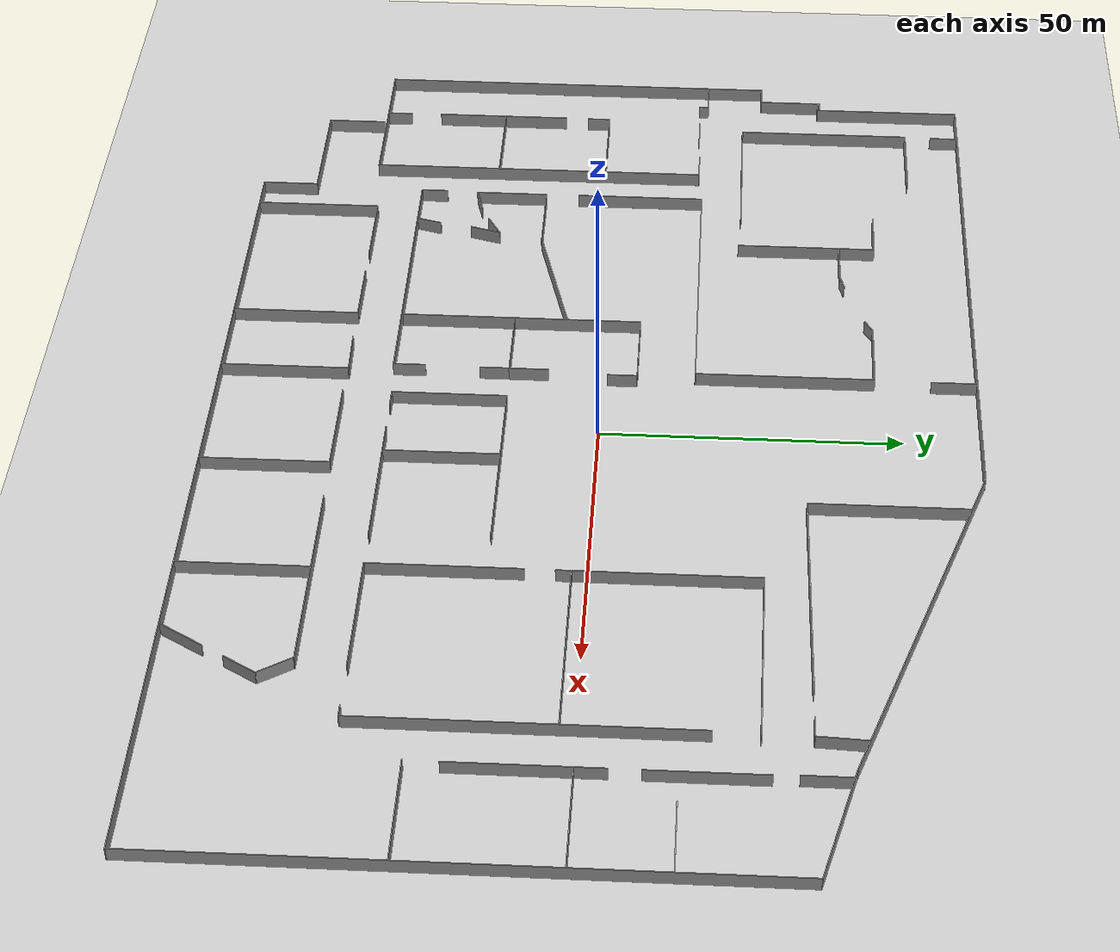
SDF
<sdf version="1.6">
 <world name="default">
  <model name="ground_plane">
   <static>1</static>
   <link name="link">
    <collision name="collision">
     <geometry><plane><normal>0 0 1</normal><size>100 100</size></plane></geometry>
     <surface>
      <contact><collide_bitmask>65535</collide_bitmask></contact>
      <friction><ode><mu>100</mu><mu2>50</mu2></ode></friction>
     </surface>
    </collision>
    <visual name="visual">
     <cast_shadows>0</cast_shadows>
     <geometry><plane><normal>0 0 1</normal><size>100 100</size></plane></geometry>
     <material>
      <script><uri>file://media/materials/scripts/gazebo.material</uri><name>Gazebo/Grey</name></script>
     </material>
    </visual>
   </link>
  </model>
  <model name="200x200">
   <pose>-1.934 -0.6282 0 0 -0 0</pose>
   <link name="Wall_1">
    <collision name="Wall_1_Collision">
     <geometry><box><size>2 0.15 2.5</size></box></geometry>
     <pose>0 0 1.25 0 -0 0</pose>
    </collision>
    <visual name="Wall_1_Visual">
     <pose>0 0 1.25 0 -0 0</pose>
     <geometry><box><size>2 0.15 2.5</size></box></geometry>
     <material>
      <script><uri>file://media/materials/scripts/gazebo.material</uri><name>Gazebo/Grey</name></script>
      <ambient>1 1 1 1</ambient>
     </material>
     <meta><layer>0</layer></meta>
    </visual>
    <pose>-88.1339 37.765 0 0 -0 3.14159</pose>
   </link>
   <link name="Wall_10">
    <collision name="Wall_10_Collision">
     <geometry><box><size>2.16821 0.15 2.5</size></box></geometry>
     <pose>0 0 1.25 0 -0 0</pose>
    </collision>
    <visual name="Wall_10_Visual">
     <pose>0 0 1.25 0 -0 0</pose>
     <geometry><box><size>2.16821 0.15 2.5</size></box></geometry>
     <material>
      <script><uri>file://media/materials/scripts/gazebo.material</uri><name>Gazebo/Grey</name></script>
      <ambient>1 1 1 1</ambient>
     </material>
     <meta><layer>0</layer></meta>
    </visual>
    <pose>-88.0244 37.494 0 0 -0 -3.12123</pose>
   </link>
   <link name="Wall_100">
    <collision name="Wall_100_Collision">
     <geometry><box><size>21.5 0.15 2.5</size></box></geometry>
     <pose>0 0 1.25 0 -0 0</pose>
    </collision>
    <visual name="Wall_100_Visual">
     <pose>0 0 1.25 0 -0 0</pose>
     <geometry><box><size>21.5 0.15 2.5</size></box></geometry>
     <material>
      <script><uri>file://media/materials/scripts/gazebo.material</uri><name>Gazebo/Grey</name></script>
      <ambient>1 1 1 1</ambient>
     </material>
     <meta><layer>0</layer></meta>
    </visual>
    <pose>-9.33183 -52.4163 0 0 -0 -1.5708</pose>
   </link>
   <link name="Wall_102">
    <collision name="Wall_102_Collision">
     <geometry><box><size>17.5 0.15 2.5</size></box></geometry>
     <pose>0 0 1.25 0 -0 0</pose>
    </collision>
    <visual name="Wall_102_Visual">
     <pose>0 0 1.25 0 -0 0</pose>
     <geometry><box><size>17.5 0.15 2.5</size></box></geometry>
     <material>
      <script><uri>file://media/materials/scripts/gazebo.material</uri><name>Gazebo/Grey</name></script>
      <ambient>1 1 1 1</ambient>
     </material>
     <meta><layer>0</layer></meta>
    </visual>
    <pose>4.91351 -41.9689 0 0 -0 0</pose>
   </link>
   <link name="Wall_103">
    <collision name="Wall_103_Collision">
     <geometry><box><size>21.25 0.15 2.5</size></box></geometry>
     <pose>0 0 1.25 0 -0 0</pose>
    </collision>
    <visual name="Wall_103_Visual">
     <pose>0 0 1.25 0 -0 0</pose>
     <geometry><box><size>21.25 0.15 2.5</size></box></geometry>
     <material>
      <script><uri>file://media/materials/scripts/gazebo.material</uri><name>Gazebo/Grey</name></script>
      <ambient>1 1 1 1</ambient>
     </material>
     <meta><layer>0</layer></meta>
    </visual>
    <pose>13.5885 -52.5189 0 0 -0 -1.5708</pose>
   </link>
   <link name="Wall_105">
    <collision name="Wall_105_Collision">
     <geometry><box><size>34.75 0.15 2.5</size></box></geometry>
     <pose>0 0 1.25 0 -0 0</pose>
    </collision>
    <visual name="Wall_105_Visual">
     <pose>0 0 1.25 0 -0 0</pose>
     <geometry><box><size>34.75 0.15 2.5</size></box></geometry>
     <material>
      <script><uri>file://media/materials/scripts/gazebo.material</uri><name>Gazebo/Grey</name></script>
      <ambient>1 1 1 1</ambient>
     </material>
     <meta><layer>0</layer></meta>
    </visual>
    <pose>38.7694 -41.8672 0 0 -0 0</pose>
   </link>
   <link name="Wall_106">
    <collision name="Wall_106_Collision">
     <geometry><box><size>6.26653 0.15 2.5</size></box></geometry>
     <pose>0 0 1.25 0 -0 0</pose>
    </collision>
    <visual name="Wall_106_Visual">
     <pose>0 0 1.25 0 -0 0</pose>
     <geometry><box><size>6.26653 0.15 2.5</size></box></geometry>
     <material>
      <script><uri>file://media/materials/scripts/gazebo.material</uri><name>Gazebo/Grey</name></script>
      <ambient>1 1 1 1</ambient>
     </material>
     <meta><layer>0</layer></meta>
    </visual>
    <pose>57.69 -44.5564 0 0 -0 -1.0123</pose>
   </link>
   <link name="Wall_107">
    <collision name="Wall_107_Collision">
     <geometry><box><size>6.25 0.15 2.5</size></box></geometry>
     <pose>0 0 1.25 0 -0 0</pose>
    </collision>
    <visual name="Wall_107_Visual">
     <pose>0 0 1.25 0 -0 0</pose>
     <geometry><box><size>6.25 0.15 2.5</size></box></geometry>
     <material>
      <script><uri>file://media/materials/scripts/gazebo.material</uri><name>Gazebo/Grey</name></script>
      <ambient>1 1 1 1</ambient>
     </material>
     <meta><layer>0</layer></meta>
    </visual>
    <pose>57.7856 -49.7913 0 0 -0 -2.0944</pose>
   </link>
   <link name="Wall_11">
    <collision name="Wall_11_Collision">
     <geometry><box><size>10.75 0.15 2.5</size></box></geometry>
     <pose>0 0 1.25 0 -0 0</pose>
    </collision>
    <visual name="Wall_11_Visual">
     <pose>0 0 1.25 0 -0 0</pose>
     <geometry><box><size>10.75 0.15 2.5</size></box></geometry>
     <material>
      <script><uri>file://media/materials/scripts/gazebo.material</uri><name>Gazebo/Grey</name></script>
      <ambient>1 1 1 1</ambient>
     </material>
     <meta><layer>0</layer></meta>
    </visual>
    <pose>-89.0333 32.1734 0 0 -0 -1.5708</pose>
   </link>
   <link name="Wall_110">
    <collision name="Wall_110_Collision">
     <geometry><box><size>8.25 0.15 2.5</size></box></geometry>
     <pose>0 0 1.25 0 -0 0</pose>
    </collision>
    <visual name="Wall_110_Visual">
     <pose>0 0 1.25 0 -0 0</pose>
     <geometry><box><size>8.25 0.15 2.5</size></box></geometry>
     <material>
      <script><uri>file://media/materials/scripts/gazebo.material</uri><name>Gazebo/Grey</name></script>
      <ambient>1 1 1 1</ambient>
     </material>
     <meta><layer>0</layer></meta>
    </visual>
    <pose>52.2169 -59.5102 0 0 -0 -2.0944</pose>
   </link>
   <link name="Wall_112">
    <collision name="Wall_112_Collision">
     <geometry><box><size>21.25 0.15 2.5</size></box></geometry>
     <pose>0 0 1.25 0 -0 0</pose>
    </collision>
    <visual name="Wall_112_Visual">
     <pose>0 0 1.25 0 -0 0</pose>
     <geometry><box><size>21.25 0.15 2.5</size></box></geometry>
     <material>
      <script><uri>file://media/materials/scripts/gazebo.material</uri><name>Gazebo/Grey</name></script>
      <ambient>1 1 1 1</ambient>
     </material>
     <meta><layer>0</layer></meta>
    </visual>
    <pose>37.0784 -52.4679 0 0 -0 -1.5708</pose>
   </link>
   <link name="Wall_114">
    <collision name="Wall_114_Collision">
     <geometry><box><size>4.75 0.15 2.5</size></box></geometry>
     <pose>0 0 1.25 0 -0 0</pose>
    </collision>
    <visual name="Wall_114_Visual">
     <pose>0 0 1.25 0 -0 0</pose>
     <geometry><box><size>4.75 0.15 2.5</size></box></geometry>
     <material>
      <script><uri>file://media/materials/scripts/gazebo.material</uri><name>Gazebo/Grey</name></script>
      <ambient>1 1 1 1</ambient>
     </material>
     <meta><layer>0</layer></meta>
    </visual>
    <pose>-56.2329 -23.5876 0 0 -0 0.261799</pose>
   </link>
   <link name="Wall_116">
    <collision name="Wall_116_Collision">
     <geometry><box><size>4.75 0.15 2.5</size></box></geometry>
     <pose>0 0 1.25 0 -0 0</pose>
    </collision>
    <visual name="Wall_116_Visual">
     <pose>0 0 1.25 0 -0 0</pose>
     <geometry><box><size>4.75 0.15 2.5</size></box></geometry>
     <material>
      <script><uri>file://media/materials/scripts/gazebo.material</uri><name>Gazebo/Grey</name></script>
      <ambient>1 1 1 1</ambient>
     </material>
     <meta><layer>0</layer></meta>
    </visual>
    <pose>-49.033 -20.4831 0 0 -0 0.523599</pose>
   </link>
   <link name="Wall_117">
    <collision name="Wall_117_Collision">
     <geometry><box><size>5.5 0.15 2.5</size></box></geometry>
     <pose>0 0 1.25 0 -0 0</pose>
    </collision>
    <visual name="Wall_117_Visual">
     <pose>0 0 1.25 0 -0 0</pose>
     <geometry><box><size>5.5 0.15 2.5</size></box></geometry>
     <material>
      <script><uri>file://media/materials/scripts/gazebo.material</uri><name>Gazebo/Grey</name></script>
      <ambient>1 1 1 1</ambient>
     </material>
     <meta><layer>0</layer></meta>
    </visual>
    <pose>-47.7335 -21.9169 0 0 -0 -1.8326</pose>
   </link>
   <link name="Wall_119">
    <collision name="Wall_119_Collision">
     <geometry><box><size>4.5 0.15 2.5</size></box></geometry>
     <pose>0 0 1.25 0 -0 0</pose>
    </collision>
    <visual name="Wall_119_Visual">
     <pose>0 0 1.25 0 -0 0</pose>
     <geometry><box><size>4.5 0.15 2.5</size></box></geometry>
     <material>
      <script><uri>file://media/materials/scripts/gazebo.material</uri><name>Gazebo/Grey</name></script>
      <ambient>1 1 1 1</ambient>
     </material>
     <meta><layer>0</layer></meta>
    </visual>
    <pose>-49.8293 -32.1308 0 0 -0 -1.8326</pose>
   </link>
   <link name="Wall_12">
    <collision name="Wall_12_Collision">
     <geometry><box><size>4 0.15 2.5</size></box></geometry>
     <pose>0 0 1.25 0 -0 0</pose>
    </collision>
    <visual name="Wall_12_Visual">
     <pose>0 0 1.25 0 -0 0</pose>
     <geometry><box><size>4 0.15 2.5</size></box></geometry>
     <material>
      <script><uri>file://media/materials/scripts/gazebo.material</uri><name>Gazebo/Grey</name></script>
      <ambient>1 1 1 1</ambient>
     </material>
     <meta><layer>0</layer></meta>
    </visual>
    <pose>-90.9583 26.8734 0 0 -0 3.14159</pose>
   </link>
   <link name="Wall_121">
    <collision name="Wall_121_Collision">
     <geometry><box><size>15.25 0.15 2.5</size></box></geometry>
     <pose>0 0 1.25 0 -0 0</pose>
    </collision>
    <visual name="Wall_121_Visual">
     <pose>0 0 1.25 0 -0 0</pose>
     <geometry><box><size>15.25 0.15 2.5</size></box></geometry>
     <material>
      <script><uri>file://media/materials/scripts/gazebo.material</uri><name>Gazebo/Grey</name></script>
      <ambient>1 1 1 1</ambient>
     </material>
     <meta><layer>0</layer></meta>
    </visual>
    <pose>-74.4745 -1.46643 0 0 -0 3.14159</pose>
   </link>
   <link name="Wall_122">
    <collision name="Wall_122_Collision">
     <geometry><box><size>4 0.15 2.5</size></box></geometry>
     <pose>0 0 1.25 0 -0 0</pose>
    </collision>
    <visual name="Wall_122_Visual">
     <pose>0 0 1.25 0 -0 0</pose>
     <geometry><box><size>4 0.15 2.5</size></box></geometry>
     <material>
      <script><uri>file://media/materials/scripts/gazebo.material</uri><name>Gazebo/Grey</name></script>
      <ambient>1 1 1 1</ambient>
     </material>
     <meta><layer>0</layer></meta>
    </visual>
    <pose>-82.0245 -3.39143 0 0 -0 -1.5708</pose>
   </link>
   <link name="Wall_124">
    <collision name="Wall_124_Collision">
     <geometry><box><size>23.5 0.15 2.5</size></box></geometry>
     <pose>0 0 1.25 0 -0 0</pose>
    </collision>
    <visual name="Wall_124_Visual">
     <pose>0 0 1.25 0 -0 0</pose>
     <geometry><box><size>23.5 0.15 2.5</size></box></geometry>
     <material>
      <script><uri>file://media/materials/scripts/gazebo.material</uri><name>Gazebo/Grey</name></script>
      <ambient>1 1 1 1</ambient>
     </material>
     <meta><layer>0</layer></meta>
    </visual>
    <pose>-82.0598 -21.3227 0 0 -0 -1.5708</pose>
   </link>
   <link name="Wall_126">
    <collision name="Wall_126_Collision">
     <geometry><box><size>16.25 0.15 2.5</size></box></geometry>
     <pose>0 0 1.25 0 -0 0</pose>
    </collision>
    <visual name="Wall_126_Visual">
     <pose>0 0 1.25 0 -0 0</pose>
     <geometry><box><size>16.25 0.15 2.5</size></box></geometry>
     <material>
      <script><uri>file://media/materials/scripts/gazebo.material</uri><name>Gazebo/Grey</name></script>
      <ambient>1 1 1 1</ambient>
     </material>
     <meta><layer>0</layer></meta>
    </visual>
    <pose>-73.9643 -20.8969 0 0 -0 0</pose>
   </link>
   <link name="Wall_128">
    <collision name="Wall_128_Collision">
     <geometry><box><size>4.5 0.15 2.5</size></box></geometry>
     <pose>0 0 1.25 0 -0 0</pose>
    </collision>
    <visual name="Wall_128_Visual">
     <pose>0 0 1.25 0 -0 0</pose>
     <geometry><box><size>4.5 0.15 2.5</size></box></geometry>
     <material>
      <script><uri>file://media/materials/scripts/gazebo.material</uri><name>Gazebo/Grey</name></script>
      <ambient>1 1 1 1</ambient>
     </material>
     <meta><layer>0</layer></meta>
    </visual>
    <pose>-81.9745 -40.7846 0 0 -0 -1.5708</pose>
   </link>
   <link name="Wall_13">
    <collision name="Wall_13_Collision">
     <geometry><box><size>70 0.15 2.5</size></box></geometry>
     <pose>0 0 1.25 0 -0 0</pose>
    </collision>
    <visual name="Wall_13_Visual">
     <pose>0 0 1.25 0 -0 0</pose>
     <geometry><box><size>70 0.15 2.5</size></box></geometry>
     <material>
      <script><uri>file://media/materials/scripts/gazebo.material</uri><name>Gazebo/Grey</name></script>
      <ambient>1 1 1 1</ambient>
     </material>
     <meta><layer>0</layer></meta>
    </visual>
    <pose>-92.8833 -8.05159 0 0 -0 -1.5708</pose>
   </link>
   <link name="Wall_132">
    <collision name="Wall_132_Collision">
     <geometry><box><size>26 0.15 2.5</size></box></geometry>
     <pose>0 0 1.25 0 -0 0</pose>
    </collision>
    <visual name="Wall_132_Visual">
     <pose>0 0 1.25 0 -0 0</pose>
     <geometry><box><size>26 0.15 2.5</size></box></geometry>
     <material>
      <script><uri>file://media/materials/scripts/gazebo.material</uri><name>Gazebo/Grey</name></script>
      <ambient>1 1 1 1</ambient>
     </material>
     <meta><layer>0</layer></meta>
    </visual>
    <pose>19.1403 47.6641 0 0 -0 -1.5708</pose>
   </link>
   <link name="Wall_133">
    <collision name="Wall_133_Collision">
     <geometry><box><size>39.4868 0.15 2.5</size></box></geometry>
     <pose>0 0 1.25 0 -0 0</pose>
    </collision>
    <visual name="Wall_133_Visual">
     <pose>0 0 1.25 0 -0 0</pose>
     <geometry><box><size>39.4868 0.15 2.5</size></box></geometry>
     <material>
      <script><uri>file://media/materials/scripts/gazebo.material</uri><name>Gazebo/Grey</name></script>
      <ambient>1 1 1 1</ambient>
     </material>
     <meta><layer>0</layer></meta>
    </visual>
    <pose>38.8057 35.0158 0 0 -0 0.017285</pose>
   </link>
   <link name="Wall_135">
    <collision name="Wall_135_Collision">
     <geometry><box><size>3.75488 0.15 2.5</size></box></geometry>
     <pose>0 0 1.25 0 -0 0</pose>
    </collision>
    <visual name="Wall_135_Visual">
     <pose>0 0 1.25 0 -0 0</pose>
     <geometry><box><size>3.75488 0.15 2.5</size></box></geometry>
     <material>
      <script><uri>file://media/materials/scripts/gazebo.material</uri><name>Gazebo/Grey</name></script>
      <ambient>1 1 1 1</ambient>
     </material>
     <meta><layer>0</layer></meta>
    </visual>
    <pose>65.5332 35.4234 0 0 -0 0</pose>
   </link>
   <link name="Wall_136">
    <collision name="Wall_136_Collision">
     <geometry><box><size>7.97058 0.15 2.5</size></box></geometry>
     <pose>0 0 1.25 0 -0 0</pose>
    </collision>
    <visual name="Wall_136_Visual">
     <pose>0 0 1.25 0 -0 0</pose>
     <geometry><box><size>7.97058 0.15 2.5</size></box></geometry>
     <material>
      <script><uri>file://media/materials/scripts/gazebo.material</uri><name>Gazebo/Grey</name></script>
      <ambient>1 1 1 1</ambient>
     </material>
     <meta><layer>0</layer></meta>
    </visual>
    <pose>67.5318 39.3778 0 0 -0 1.52063</pose>
   </link>
   <link name="Wall_138">
    <collision name="Wall_138_Collision">
     <geometry><box><size>7.75 0.15 2.5</size></box></geometry>
     <pose>0 0 1.25 0 -0 0</pose>
    </collision>
    <visual name="Wall_138_Visual">
     <pose>0 0 1.25 0 -0 0</pose>
     <geometry><box><size>7.75 0.15 2.5</size></box></geometry>
     <material>
      <script><uri>file://media/materials/scripts/gazebo.material</uri><name>Gazebo/Grey</name></script>
      <ambient>1 1 1 1</ambient>
     </material>
     <meta><layer>0</layer></meta>
    </visual>
    <pose>74.7284 37.1199 0 0 -0 -1.5708</pose>
   </link>
   <link name="Wall_14">
    <collision name="Wall_14_Collision">
     <geometry><box><size>27.25 0.15 2.5</size></box></geometry>
     <pose>0 0 1.25 0 -0 0</pose>
    </collision>
    <visual name="Wall_14_Visual">
     <pose>0 0 1.25 0 -0 0</pose>
     <geometry><box><size>27.25 0.15 2.5</size></box></geometry>
     <material>
      <script><uri>file://media/materials/scripts/gazebo.material</uri><name>Gazebo/Grey</name></script>
      <ambient>1 1 1 1</ambient>
     </material>
     <meta><layer>0</layer></meta>
    </visual>
    <pose>-79.3333 -42.9766 0 0 -0 0</pose>
   </link>
   <link name="Wall_140">
    <collision name="Wall_140_Collision">
     <geometry><box><size>18.75 0.15 2.5</size></box></geometry>
     <pose>0 0 1.25 0 -0 0</pose>
    </collision>
    <visual name="Wall_140_Visual">
     <pose>0 0 1.25 0 -0 0</pose>
     <geometry><box><size>18.75 0.15 2.5</size></box></geometry>
     <material>
      <script><uri>file://media/materials/scripts/gazebo.material</uri><name>Gazebo/Grey</name></script>
      <ambient>1 1 1 1</ambient>
     </material>
     <meta><layer>0</layer></meta>
    </visual>
    <pose>74.8898 20.0424 0 0 -0 -1.5708</pose>
   </link>
   <link name="Wall_142">
    <collision name="Wall_142_Collision">
     <geometry><box><size>24.25 0.15 2.5</size></box></geometry>
     <pose>0 0 1.25 0 -0 0</pose>
    </collision>
    <visual name="Wall_142_Visual">
     <pose>0 0 1.25 0 -0 0</pose>
     <geometry><box><size>24.25 0.15 2.5</size></box></geometry>
     <material>
      <script><uri>file://media/materials/scripts/gazebo.material</uri><name>Gazebo/Grey</name></script>
      <ambient>1 1 1 1</ambient>
     </material>
     <meta><layer>0</layer></meta>
    </visual>
    <pose>74.8898 -6.2518 0 0 -0 -1.5708</pose>
   </link>
   <link name="Wall_144">
    <collision name="Wall_144_Collision">
     <geometry><box><size>18.25 0.15 2.5</size></box></geometry>
     <pose>0 0 1.25 0 -0 0</pose>
    </collision>
    <visual name="Wall_144_Visual">
     <pose>0 0 1.25 0 -0 0</pose>
     <geometry><box><size>18.25 0.15 2.5</size></box></geometry>
     <material>
      <script><uri>file://media/materials/scripts/gazebo.material</uri><name>Gazebo/Grey</name></script>
      <ambient>1 1 1 1</ambient>
     </material>
     <meta><layer>0</layer></meta>
    </visual>
    <pose>83.7898 -23.7446 0 0 -0 0</pose>
   </link>
   <link name="Wall_146">
    <collision name="Wall_146_Collision">
     <geometry><box><size>12.5 0.15 2.5</size></box></geometry>
     <pose>0 0 1.25 0 -0 0</pose>
    </collision>
    <visual name="Wall_146_Visual">
     <pose>0 0 1.25 0 -0 0</pose>
     <geometry><box><size>12.5 0.15 2.5</size></box></geometry>
     <material>
      <script><uri>file://media/materials/scripts/gazebo.material</uri><name>Gazebo/Grey</name></script>
      <ambient>1 1 1 1</ambient>
     </material>
     <meta><layer>0</layer></meta>
    </visual>
    <pose>86.6134 15.8457 0 0 -0 0</pose>
   </link>
   <link name="Wall_149">
    <collision name="Wall_149_Collision">
     <geometry><box><size>18 0.15 2.5</size></box></geometry>
     <pose>0 0 1.25 0 -0 0</pose>
    </collision>
    <visual name="Wall_149_Visual">
     <pose>0 0 1.25 0 -0 0</pose>
     <geometry><box><size>18 0.15 2.5</size></box></geometry>
     <material>
      <script><uri>file://media/materials/scripts/gazebo.material</uri><name>Gazebo/Grey</name></script>
      <ambient>1 1 1 1</ambient>
     </material>
     <meta><layer>0</layer></meta>
    </visual>
    <pose>83.8483 0.888992 0 0 -0 0</pose>
   </link>
   <link name="Wall_15">
    <collision name="Wall_15_Collision">
     <geometry><box><size>58.75 0.15 2.5</size></box></geometry>
     <pose>0 0 1.25 0 -0 0</pose>
    </collision>
    <visual name="Wall_15_Visual">
     <pose>0 0 1.25 0 -0 0</pose>
     <geometry><box><size>58.75 0.15 2.5</size></box></geometry>
     <material>
      <script><uri>file://media/materials/scripts/gazebo.material</uri><name>Gazebo/Grey</name></script>
      <ambient>1 1 1 1</ambient>
     </material>
     <meta><layer>0</layer></meta>
    </visual>
    <pose>-65.7833 -13.6766 0 0 -0 1.5708</pose>
   </link>
   <link name="Wall_151">
    <collision name="Wall_151_Collision">
     <geometry><box><size>7.75 0.15 2.5</size></box></geometry>
     <pose>0 0 1.25 0 -0 0</pose>
    </collision>
    <visual name="Wall_151_Visual">
     <pose>0 0 1.25 0 -0 0</pose>
     <geometry><box><size>7.75 0.15 2.5</size></box></geometry>
     <material>
      <script><uri>file://media/materials/scripts/gazebo.material</uri><name>Gazebo/Grey</name></script>
      <ambient>1 1 1 1</ambient>
     </material>
     <meta><layer>0</layer></meta>
    </visual>
    <pose>-10.7428 59.3502 0 0 -0 -1.5708</pose>
   </link>
   <link name="Wall_153">
    <collision name="Wall_153_Collision">
     <geometry><box><size>1.75 0.15 2.5</size></box></geometry>
     <pose>0 0 1.25 0 -0 0</pose>
    </collision>
    <visual name="Wall_153_Visual">
     <pose>0 0 1.25 0 -0 0</pose>
     <geometry><box><size>1.75 0.15 2.5</size></box></geometry>
     <material>
      <script><uri>file://media/materials/scripts/gazebo.material</uri><name>Gazebo/Grey</name></script>
      <ambient>1 1 1 1</ambient>
     </material>
     <meta><layer>0</layer></meta>
    </visual>
    <pose>-86.8358 16.1079 0 0 -0 -1.5708</pose>
   </link>
   <link name="Wall_16">
    <collision name="Wall_16_Collision">
     <geometry><box><size>5.5 0.15 2.5</size></box></geometry>
     <pose>0 0 1.25 0 -0 0</pose>
    </collision>
    <visual name="Wall_16_Visual">
     <pose>0 0 1.25 0 -0 0</pose>
     <geometry><box><size>5.5 0.15 2.5</size></box></geometry>
     <material>
      <script><uri>file://media/materials/scripts/gazebo.material</uri><name>Gazebo/Grey</name></script>
      <ambient>1 1 1 1</ambient>
     </material>
     <meta><layer>0</layer></meta>
    </visual>
    <pose>-68.4583 15.6234 0 0 -0 3.14159</pose>
   </link>
   <link name="Wall_18">
    <collision name="Wall_18_Collision">
     <geometry><box><size>4.5 0.15 2.5</size></box></geometry>
     <pose>0 0 1.25 0 -0 0</pose>
    </collision>
    <visual name="Wall_18_Visual">
     <pose>0 0 1.25 0 -0 0</pose>
     <geometry><box><size>4.5 0.15 2.5</size></box></geometry>
     <material>
      <script><uri>file://media/materials/scripts/gazebo.material</uri><name>Gazebo/Grey</name></script>
      <ambient>1 1 1 1</ambient>
     </material>
     <meta><layer>0</layer></meta>
    </visual>
    <pose>-79.2848 15.4422 0 0 -0 0</pose>
   </link>
   <link name="Wall_20">
    <collision name="Wall_20_Collision">
     <geometry><box><size>6.14833 0.15 2.5</size></box></geometry>
     <pose>0 0 1.25 0 -0 0</pose>
    </collision>
    <visual name="Wall_20_Visual">
     <pose>0 0 1.25 0 -0 0</pose>
     <geometry><box><size>6.14833 0.15 2.5</size></box></geometry>
     <material>
      <script><uri>file://media/materials/scripts/gazebo.material</uri><name>Gazebo/Grey</name></script>
      <ambient>1 1 1 1</ambient>
     </material>
     <meta><layer>0</layer></meta>
    </visual>
    <pose>-89.835 16.9079 0 0 -0 0</pose>
   </link>
   <link name="Wall_23">
    <collision name="Wall_23_Collision">
     <geometry><box><size>10.25 0.15 2.5</size></box></geometry>
     <pose>0 0 1.25 0 -0 0</pose>
    </collision>
    <visual name="Wall_23_Visual">
     <pose>0 0 1.25 0 -0 0</pose>
     <geometry><box><size>10.25 0.15 2.5</size></box></geometry>
     <material>
      <script><uri>file://media/materials/scripts/gazebo.material</uri><name>Gazebo/Grey</name></script>
      <ambient>1 1 1 1</ambient>
     </material>
     <meta><layer>0</layer></meta>
    </visual>
    <pose>-79.0836 -48.5195 0 0 -0 -1.5708</pose>
   </link>
   <link name="Wall_24">
    <collision name="Wall_24_Collision">
     <geometry><box><size>19.75 0.15 2.5</size></box></geometry>
     <pose>0 0 1.25 0 -0 0</pose>
    </collision>
    <visual name="Wall_24_Visual">
     <pose>0 0 1.25 0 -0 0</pose>
     <geometry><box><size>19.75 0.15 2.5</size></box></geometry>
     <material>
      <script><uri>file://media/materials/scripts/gazebo.material</uri><name>Gazebo/Grey</name></script>
      <ambient>1 1 1 1</ambient>
     </material>
     <meta><layer>0</layer></meta>
    </visual>
    <pose>-69.2836 -53.5695 0 0 -0 0</pose>
   </link>
   <link name="Wall_25">
    <collision name="Wall_25_Collision">
     <geometry><box><size>9.75 0.15 2.5</size></box></geometry>
     <pose>0 0 1.25 0 -0 0</pose>
    </collision>
    <visual name="Wall_25_Visual">
     <pose>0 0 1.25 0 -0 0</pose>
     <geometry><box><size>9.75 0.15 2.5</size></box></geometry>
     <material>
      <script><uri>file://media/materials/scripts/gazebo.material</uri><name>Gazebo/Grey</name></script>
      <ambient>1 1 1 1</ambient>
     </material>
     <meta><layer>0</layer></meta>
    </visual>
    <pose>-59.4836 -58.3695 0 0 -0 -1.5708</pose>
   </link>
   <link name="Wall_26">
    <collision name="Wall_26_Collision">
     <geometry><box><size>152.501 0.15 2.5</size></box></geometry>
     <pose>0 0 1.25 0 -0 0</pose>
    </collision>
    <visual name="Wall_26_Visual">
     <pose>0 0 1.25 0 -0 0</pose>
     <geometry><box><size>152.501 0.15 2.5</size></box></geometry>
     <material>
      <script><uri>file://media/materials/scripts/gazebo.material</uri><name>Gazebo/Grey</name></script>
      <ambient>1 1 1 1</ambient>
     </material>
     <meta><layer>0</layer></meta>
    </visual>
    <pose>16.6914 -63.1695 0 0 -0 0</pose>
   </link>
   <link name="Wall_27">
    <collision name="Wall_27_Collision">
     <geometry><box><size>99.5 0.15 2.5</size></box></geometry>
     <pose>0 0 1.25 0 -0 0</pose>
    </collision>
    <visual name="Wall_27_Visual">
     <pose>0 0 1.25 0 -0 0</pose>
     <geometry><box><size>99.5 0.15 2.5</size></box></geometry>
     <material>
      <script><uri>file://media/materials/scripts/gazebo.material</uri><name>Gazebo/Grey</name></script>
      <ambient>1 1 1 1</ambient>
     </material>
     <meta><layer>0</layer></meta>
    </visual>
    <pose>92.8664 -13.4945 0 0 -0 1.5708</pose>
   </link>
   <link name="Wall_28">
    <collision name="Wall_28_Collision">
     <geometry><box><size>20.5 0.15 2.5</size></box></geometry>
     <pose>0 0 1.25 0 -0 0</pose>
    </collision>
    <visual name="Wall_28_Visual">
     <pose>0 0 1.25 0 -0 0</pose>
     <geometry><box><size>20.5 0.15 2.5</size></box></geometry>
     <material>
      <script><uri>file://media/materials/scripts/gazebo.material</uri><name>Gazebo/Grey</name></script>
      <ambient>1 1 1 1</ambient>
     </material>
     <meta><layer>0</layer></meta>
    </visual>
    <pose>83.0381 38.814 0 0 -0 2.87979</pose>
   </link>
   <link name="Wall_29">
    <collision name="Wall_29_Collision">
     <geometry><box><size>65.0274 0.15 2.5</size></box></geometry>
     <pose>0 0 1.25 0 -0 0</pose>
    </collision>
    <visual name="Wall_29_Visual">
     <pose>0 0 1.25 0 -0 0</pose>
     <geometry><box><size>65.0274 0.15 2.5</size></box></geometry>
     <material>
      <script><uri>file://media/materials/scripts/gazebo.material</uri><name>Gazebo/Grey</name></script>
      <ambient>1 1 1 1</ambient>
     </material>
     <meta><layer>0</layer></meta>
    </visual>
    <pose>42.6397 52.2981 0 0 -0 2.80052</pose>
   </link>
   <link name="Wall_30">
    <collision name="Wall_30_Collision">
     <geometry><box><size>99.25 0.15 2.5</size></box></geometry>
     <pose>0 0 1.25 0 -0 0</pose>
    </collision>
    <visual name="Wall_30_Visual">
     <pose>0 0 1.25 0 -0 0</pose>
     <geometry><box><size>99.25 0.15 2.5</size></box></geometry>
     <material>
      <script><uri>file://media/materials/scripts/gazebo.material</uri><name>Gazebo/Grey</name></script>
      <ambient>1 1 1 1</ambient>
     </material>
     <meta><layer>0</layer></meta>
    </visual>
    <pose>-37.4393 63.1487 0 0 -0 3.14159</pose>
   </link>
   <link name="Wall_32">
    <collision name="Wall_32_Collision">
     <geometry><box><size>5 0.15 2.5</size></box></geometry>
     <pose>0 0 1.25 0 -0 0</pose>
    </collision>
    <visual name="Wall_32_Visual">
     <pose>0 0 1.25 0 -0 0</pose>
     <geometry><box><size>5 0.15 2.5</size></box></geometry>
     <material>
      <script><uri>file://media/materials/scripts/gazebo.material</uri><name>Gazebo/Grey</name></script>
      <ambient>1 1 1 1</ambient>
     </material>
     <meta><layer>0</layer></meta>
    </visual>
    <pose>-79.1639 60.656 0 0 -0 -1.5708</pose>
   </link>
   <link name="Wall_34">
    <collision name="Wall_34_Collision">
     <geometry><box><size>14 0.15 2.5</size></box></geometry>
     <pose>0 0 1.25 0 -0 0</pose>
    </collision>
    <visual name="Wall_34_Visual">
     <pose>0 0 1.25 0 -0 0</pose>
     <geometry><box><size>14 0.15 2.5</size></box></geometry>
     <material>
      <script><uri>file://media/materials/scripts/gazebo.material</uri><name>Gazebo/Grey</name></script>
      <ambient>1 1 1 1</ambient>
     </material>
     <meta><layer>0</layer></meta>
    </visual>
    <pose>-72.4034 53.5186 0 0 -0 3.14159</pose>
   </link>
   <link name="Wall_35">
    <collision name="Wall_35_Collision">
     <geometry><box><size>30.25 0.15 2.5</size></box></geometry>
     <pose>0 0 1.25 0 -0 0</pose>
    </collision>
    <visual name="Wall_35_Visual">
     <pose>0 0 1.25 0 -0 0</pose>
     <geometry><box><size>30.25 0.15 2.5</size></box></geometry>
     <material>
      <script><uri>file://media/materials/scripts/gazebo.material</uri><name>Gazebo/Grey</name></script>
      <ambient>1 1 1 1</ambient>
     </material>
     <meta><layer>0</layer></meta>
    </visual>
    <pose>-79.3284 38.4686 0 0 -0 -1.5708</pose>
   </link>
   <link name="Wall_36">
    <collision name="Wall_36_Collision">
     <geometry><box><size>26 0.15 2.5</size></box></geometry>
     <pose>0 0 1.25 0 -0 0</pose>
    </collision>
    <visual name="Wall_36_Visual">
     <pose>0 0 1.25 0 -0 0</pose>
     <geometry><box><size>26 0.15 2.5</size></box></geometry>
     <material>
      <script><uri>file://media/materials/scripts/gazebo.material</uri><name>Gazebo/Grey</name></script>
      <ambient>1 1 1 1</ambient>
     </material>
     <meta><layer>0</layer></meta>
    </visual>
    <pose>-66.4034 23.4186 0 0 -0 0</pose>
   </link>
   <link name="Wall_38">
    <collision name="Wall_38_Collision">
     <geometry><box><size>8.75 0.15 2.5</size></box></geometry>
     <pose>0 0 1.25 0 -0 0</pose>
    </collision>
    <visual name="Wall_38_Visual">
     <pose>0 0 1.25 0 -0 0</pose>
     <geometry><box><size>8.75 0.15 2.5</size></box></geometry>
     <material>
      <script><uri>file://media/materials/scripts/gazebo.material</uri><name>Gazebo/Grey</name></script>
      <ambient>1 1 1 1</ambient>
     </material>
     <meta><layer>0</layer></meta>
    </visual>
    <pose>-49.8525 46.9117 0 0 -0 0</pose>
   </link>
   <link name="Wall_39">
    <collision name="Wall_39_Collision">
     <geometry><box><size>24 0.15 2.5</size></box></geometry>
     <pose>0 0 1.25 0 -0 0</pose>
    </collision>
    <visual name="Wall_39_Visual">
     <pose>0 0 1.25 0 -0 0</pose>
     <geometry><box><size>24 0.15 2.5</size></box></geometry>
     <material>
      <script><uri>file://media/materials/scripts/gazebo.material</uri><name>Gazebo/Grey</name></script>
      <ambient>1 1 1 1</ambient>
     </material>
     <meta><layer>0</layer></meta>
    </visual>
    <pose>-45.5525 34.9867 0 0 -0 -1.5708</pose>
   </link>
   <link name="Wall_41">
    <collision name="Wall_41_Collision">
     <geometry><box><size>8 0.15 2.5</size></box></geometry>
     <pose>0 0 1.25 0 -0 0</pose>
    </collision>
    <visual name="Wall_41_Visual">
     <pose>0 0 1.25 0 -0 0</pose>
     <geometry><box><size>8 0.15 2.5</size></box></geometry>
     <material>
      <script><uri>file://media/materials/scripts/gazebo.material</uri><name>Gazebo/Grey</name></script>
      <ambient>1 1 1 1</ambient>
     </material>
     <meta><layer>0</layer></meta>
    </visual>
    <pose>-41.5628 40.7932 0 0 -0 0</pose>
   </link>
   <link name="Wall_42">
    <collision name="Wall_42_Collision">
     <geometry><box><size>2.75 0.15 2.5</size></box></geometry>
     <pose>0 0 1.25 0 -0 0</pose>
    </collision>
    <visual name="Wall_42_Visual">
     <pose>0 0 1.25 0 -0 0</pose>
     <geometry><box><size>2.75 0.15 2.5</size></box></geometry>
     <material>
      <script><uri>file://media/materials/scripts/gazebo.material</uri><name>Gazebo/Grey</name></script>
      <ambient>1 1 1 1</ambient>
     </material>
     <meta><layer>0</layer></meta>
    </visual>
    <pose>-36.3821 41.1296 0 0 -0 0.261799</pose>
   </link>
   <link name="Wall_44">
    <collision name="Wall_44_Collision">
     <geometry><box><size>2.75 0.15 2.5</size></box></geometry>
     <pose>0 0 1.25 0 -0 0</pose>
    </collision>
    <visual name="Wall_44_Visual">
     <pose>0 0 1.25 0 -0 0</pose>
     <geometry><box><size>2.75 0.15 2.5</size></box></geometry>
     <material>
      <script><uri>file://media/materials/scripts/gazebo.material</uri><name>Gazebo/Grey</name></script>
      <ambient>1 1 1 1</ambient>
     </material>
     <meta><layer>0</layer></meta>
    </visual>
    <pose>-24.6498 45.4668 0 0 -0 0.523599</pose>
   </link>
   <link name="Wall_45">
    <collision name="Wall_45_Collision">
     <geometry><box><size>12.75 0.15 2.5</size></box></geometry>
     <pose>0 0 1.25 0 -0 0</pose>
    </collision>
    <visual name="Wall_45_Visual">
     <pose>0 0 1.25 0 -0 0</pose>
     <geometry><box><size>12.75 0.15 2.5</size></box></geometry>
     <material>
      <script><uri>file://media/materials/scripts/gazebo.material</uri><name>Gazebo/Grey</name></script>
      <ambient>1 1 1 1</ambient>
     </material>
     <meta><layer>0</layer></meta>
    </visual>
    <pose>-17.224 46.1168 0 0 -0 0</pose>
   </link>
   <link name="Wall_46">
    <collision name="Wall_46_Collision">
     <geometry><box><size>30 0.15 2.5</size></box></geometry>
     <pose>0 0 1.25 0 -0 0</pose>
    </collision>
    <visual name="Wall_46_Visual">
     <pose>0 0 1.25 0 -0 0</pose>
     <geometry><box><size>30 0.15 2.5</size></box></geometry>
     <material>
      <script><uri>file://media/materials/scripts/gazebo.material</uri><name>Gazebo/Grey</name></script>
      <ambient>1 1 1 1</ambient>
     </material>
     <meta><layer>0</layer></meta>
    </visual>
    <pose>-10.924 31.1918 0 0 -0 -1.5708</pose>
   </link>
   <link name="Wall_47">
    <collision name="Wall_47_Collision">
     <geometry><box><size>47.75 0.15 2.5</size></box></geometry>
     <pose>0 0 1.25 0 -0 0</pose>
    </collision>
    <visual name="Wall_47_Visual">
     <pose>0 0 1.25 0 -0 0</pose>
     <geometry><box><size>47.75 0.15 2.5</size></box></geometry>
     <material>
      <script><uri>file://media/materials/scripts/gazebo.material</uri><name>Gazebo/Grey</name></script>
      <ambient>1 1 1 1</ambient>
     </material>
     <meta><layer>0</layer></meta>
    </visual>
    <pose>-34.724 16.2668 0 0 -0 3.14159</pose>
   </link>
   <link name="Wall_48">
    <collision name="Wall_48_Collision">
     <geometry><box><size>22.25 0.15 2.5</size></box></geometry>
     <pose>0 0 1.25 0 -0 0</pose>
    </collision>
    <visual name="Wall_48_Visual">
     <pose>0 0 1.25 0 -0 0</pose>
     <geometry><box><size>22.25 0.15 2.5</size></box></geometry>
     <material>
      <script><uri>file://media/materials/scripts/gazebo.material</uri><name>Gazebo/Grey</name></script>
      <ambient>1 1 1 1</ambient>
     </material>
     <meta><layer>0</layer></meta>
    </visual>
    <pose>-58.524 5.21677 0 0 -0 -1.5708</pose>
   </link>
   <link name="Wall_51">
    <collision name="Wall_51_Collision">
     <geometry><box><size>12.5 0.15 2.5</size></box></geometry>
     <pose>0 0 1.25 0 -0 0</pose>
    </collision>
    <visual name="Wall_51_Visual">
     <pose>0 0 1.25 0 -0 0</pose>
     <geometry><box><size>12.5 0.15 2.5</size></box></geometry>
     <material>
      <script><uri>file://media/materials/scripts/gazebo.material</uri><name>Gazebo/Grey</name></script>
      <ambient>1 1 1 1</ambient>
     </material>
     <meta><layer>0</layer></meta>
    </visual>
    <pose>-58.457 -17.9239 0 0 -0 1.5708</pose>
   </link>
   <link name="Wall_52">
    <collision name="Wall_52_Collision">
     <geometry><box><size>13 0.15 2.5</size></box></geometry>
     <pose>0 0 1.25 0 -0 0</pose>
    </collision>
    <visual name="Wall_52_Visual">
     <pose>0 0 1.25 0 -0 0</pose>
     <geometry><box><size>13 0.15 2.5</size></box></geometry>
     <material>
      <script><uri>file://media/materials/scripts/gazebo.material</uri><name>Gazebo/Grey</name></script>
      <ambient>1 1 1 1</ambient>
     </material>
     <meta><layer>0</layer></meta>
    </visual>
    <pose>-52.032 -11.7489 0 0 -0 0</pose>
   </link>
   <link name="Wall_53">
    <collision name="Wall_53_Collision">
     <geometry><box><size>22.75 0.15 2.5</size></box></geometry>
     <pose>0 0 1.25 0 -0 0</pose>
    </collision>
    <visual name="Wall_53_Visual">
     <pose>0 0 1.25 0 -0 0</pose>
     <geometry><box><size>22.75 0.15 2.5</size></box></geometry>
     <material>
      <script><uri>file://media/materials/scripts/gazebo.material</uri><name>Gazebo/Grey</name></script>
      <ambient>1 1 1 1</ambient>
     </material>
     <meta><layer>0</layer></meta>
    </visual>
    <pose>-34.692 -8.82426 0 0 -0 0.261799</pose>
   </link>
   <link name="Wall_57">
    <collision name="Wall_57_Collision">
     <geometry><box><size>5 0.15 2.5</size></box></geometry>
     <pose>0 0 1.25 0 -0 0</pose>
    </collision>
    <visual name="Wall_57_Visual">
     <pose>0 0 1.25 0 -0 0</pose>
     <geometry><box><size>5 0.15 2.5</size></box></geometry>
     <material>
      <script><uri>file://media/materials/scripts/gazebo.material</uri><name>Gazebo/Grey</name></script>
      <ambient>1 1 1 1</ambient>
     </material>
     <meta><layer>0</layer></meta>
    </visual>
    <pose>-9.89101 4.16413 0 0 -0 1.5708</pose>
   </link>
   <link name="Wall_58">
    <collision name="Wall_58_Collision">
     <geometry><box><size>14 0.15 2.5</size></box></geometry>
     <pose>0 0 1.25 0 -0 0</pose>
    </collision>
    <visual name="Wall_58_Visual">
     <pose>0 0 1.25 0 -0 0</pose>
     <geometry><box><size>14 0.15 2.5</size></box></geometry>
     <material>
      <script><uri>file://media/materials/scripts/gazebo.material</uri><name>Gazebo/Grey</name></script>
      <ambient>1 1 1 1</ambient>
     </material>
     <meta><layer>0</layer></meta>
    </visual>
    <pose>-16.816 6.58913 0 0 -0 3.14159</pose>
   </link>
   <link name="Wall_59">
    <collision name="Wall_59_Collision">
     <geometry><box><size>40.75 0.15 2.5</size></box></geometry>
     <pose>0 0 1.25 0 -0 0</pose>
    </collision>
    <visual name="Wall_59_Visual">
     <pose>0 0 1.25 0 -0 0</pose>
     <geometry><box><size>40.75 0.15 2.5</size></box></geometry>
     <material>
      <script><uri>file://media/materials/scripts/gazebo.material</uri><name>Gazebo/Grey</name></script>
      <ambient>1 1 1 1</ambient>
     </material>
     <meta><layer>0</layer></meta>
    </visual>
    <pose>-23.741 -13.7109 0 0 -0 -1.5708</pose>
   </link>
   <link name="Wall_61">
    <collision name="Wall_61_Collision">
     <geometry><box><size>4.75 0.15 2.5</size></box></geometry>
     <pose>0 0 1.25 0 -0 0</pose>
    </collision>
    <visual name="Wall_61_Visual">
     <pose>0 0 1.25 0 -0 0</pose>
     <geometry><box><size>4.75 0.15 2.5</size></box></geometry>
     <material>
      <script><uri>file://media/materials/scripts/gazebo.material</uri><name>Gazebo/Grey</name></script>
      <ambient>1 1 1 1</ambient>
     </material>
     <meta><layer>0</layer></meta>
    </visual>
    <pose>-58.6809 -32.0092 0 0 -0 -1.5708</pose>
   </link>
   <link name="Wall_62">
    <collision name="Wall_62_Collision">
     <geometry><box><size>48 0.15 2.5</size></box></geometry>
     <pose>0 0 1.25 0 -0 0</pose>
    </collision>
    <visual name="Wall_62_Visual">
     <pose>0 0 1.25 0 -0 0</pose>
     <geometry><box><size>48 0.15 2.5</size></box></geometry>
     <material>
      <script><uri>file://media/materials/scripts/gazebo.material</uri><name>Gazebo/Grey</name></script>
      <ambient>1 1 1 1</ambient>
     </material>
     <meta><layer>0</layer></meta>
    </visual>
    <pose>-34.7559 -34.3092 0 0 -0 0</pose>
   </link>
   <link name="Wall_63">
    <collision name="Wall_63_Collision">
     <geometry><box><size>5.5 0.15 2.5</size></box></geometry>
     <pose>0 0 1.25 0 -0 0</pose>
    </collision>
    <visual name="Wall_63_Visual">
     <pose>0 0 1.25 0 -0 0</pose>
     <geometry><box><size>5.5 0.15 2.5</size></box></geometry>
     <material>
      <script><uri>file://media/materials/scripts/gazebo.material</uri><name>Gazebo/Grey</name></script>
      <ambient>1 1 1 1</ambient>
     </material>
     <meta><layer>0</layer></meta>
    </visual>
    <pose>-10.8309 -31.6342 0 0 -0 1.5708</pose>
   </link>
   <link name="Wall_65">
    <collision name="Wall_65_Collision">
     <geometry><box><size>5 0.15 2.5</size></box></geometry>
     <pose>0 0 1.25 0 -0 0</pose>
    </collision>
    <visual name="Wall_65_Visual">
     <pose>0 0 1.25 0 -0 0</pose>
     <geometry><box><size>5 0.15 2.5</size></box></geometry>
     <material>
      <script><uri>file://media/materials/scripts/gazebo.material</uri><name>Gazebo/Grey</name></script>
      <ambient>1 1 1 1</ambient>
     </material>
     <meta><layer>0</layer></meta>
    </visual>
    <pose>-10.6847 -17.2985 0 0 -0 1.5708</pose>
   </link>
   <link name="Wall_66">
    <collision name="Wall_66_Collision">
     <geometry><box><size>13 0.15 2.5</size></box></geometry>
     <pose>0 0 1.25 0 -0 0</pose>
    </collision>
    <visual name="Wall_66_Visual">
     <pose>0 0 1.25 0 -0 0</pose>
     <geometry><box><size>13 0.15 2.5</size></box></geometry>
     <material>
      <script><uri>file://media/materials/scripts/gazebo.material</uri><name>Gazebo/Grey</name></script>
      <ambient>1 1 1 1</ambient>
     </material>
     <meta><layer>0</layer></meta>
    </visual>
    <pose>-17.1097 -14.8735 0 0 -0 3.14159</pose>
   </link>
   <link name="Wall_72">
    <collision name="Wall_72_Collision">
     <geometry><box><size>6.75 0.15 2.5</size></box></geometry>
     <pose>0 0 1.25 0 -0 0</pose>
    </collision>
    <visual name="Wall_72_Visual">
     <pose>0 0 1.25 0 -0 0</pose>
     <geometry><box><size>6.75 0.15 2.5</size></box></geometry>
     <material>
      <script><uri>file://media/materials/scripts/gazebo.material</uri><name>Gazebo/Grey</name></script>
      <ambient>1 1 1 1</ambient>
     </material>
     <meta><layer>0</layer></meta>
    </visual>
    <pose>-10.6847 -11.5735 0 0 -0 1.5708</pose>
   </link>
   <link name="Wall_74">
    <collision name="Wall_74_Collision">
     <geometry><box><size>3.25 0.15 2.5</size></box></geometry>
     <pose>0 0 1.25 0 -0 0</pose>
    </collision>
    <visual name="Wall_74_Visual">
     <pose>0 0 1.25 0 -0 0</pose>
     <geometry><box><size>3.25 0.15 2.5</size></box></geometry>
     <material>
      <script><uri>file://media/materials/scripts/gazebo.material</uri><name>Gazebo/Grey</name></script>
      <ambient>1 1 1 1</ambient>
     </material>
     <meta><layer>0</layer></meta>
    </visual>
    <pose>-2.2275 -33.8189 0 0 -0 3.14159</pose>
   </link>
   <link name="Wall_75">
    <collision name="Wall_75_Collision">
     <geometry><box><size>19.25 0.15 2.5</size></box></geometry>
     <pose>0 0 1.25 0 -0 0</pose>
    </collision>
    <visual name="Wall_75_Visual">
     <pose>0 0 1.25 0 -0 0</pose>
     <geometry><box><size>19.25 0.15 2.5</size></box></geometry>
     <material>
      <script><uri>file://media/materials/scripts/gazebo.material</uri><name>Gazebo/Grey</name></script>
      <ambient>1 1 1 1</ambient>
     </material>
     <meta><layer>0</layer></meta>
    </visual>
    <pose>-3.7775 -24.2689 0 0 -0 1.5708</pose>
   </link>
   <link name="Wall_76">
    <collision name="Wall_76_Collision">
     <geometry><box><size>32.5 0.15 2.5</size></box></geometry>
     <pose>0 0 1.25 0 -0 0</pose>
    </collision>
    <visual name="Wall_76_Visual">
     <pose>0 0 1.25 0 -0 0</pose>
     <geometry><box><size>32.5 0.15 2.5</size></box></geometry>
     <material>
      <script><uri>file://media/materials/scripts/gazebo.material</uri><name>Gazebo/Grey</name></script>
      <ambient>1 1 1 1</ambient>
     </material>
     <meta><layer>0</layer></meta>
    </visual>
    <pose>12.3975 -14.7189 0 0 -0 0</pose>
   </link>
   <link name="Wall_78">
    <collision name="Wall_78_Collision">
     <geometry><box><size>19 0.15 2.5</size></box></geometry>
     <pose>0 0 1.25 0 -0 0</pose>
    </collision>
    <visual name="Wall_78_Visual">
     <pose>0 0 1.25 0 -0 0</pose>
     <geometry><box><size>19 0.15 2.5</size></box></geometry>
     <material>
      <script><uri>file://media/materials/scripts/gazebo.material</uri><name>Gazebo/Grey</name></script>
      <ambient>1 1 1 1</ambient>
     </material>
     <meta><layer>0</layer></meta>
    </visual>
    <pose>10.3276 -24.2523 0 0 -0 -1.5708</pose>
   </link>
   <link name="Wall_80">
    <collision name="Wall_80_Collision">
     <geometry><box><size>24.75 0.15 2.5</size></box></geometry>
     <pose>0 0 1.25 0 -0 0</pose>
    </collision>
    <visual name="Wall_80_Visual">
     <pose>0 0 1.25 0 -0 0</pose>
     <geometry><box><size>24.75 0.15 2.5</size></box></geometry>
     <material>
      <script><uri>file://media/materials/scripts/gazebo.material</uri><name>Gazebo/Grey</name></script>
      <ambient>1 1 1 1</ambient>
     </material>
     <meta><layer>0</layer></meta>
    </visual>
    <pose>17.125 -33.8189 0 0 -0 0</pose>
   </link>
   <link name="Wall_82">
    <collision name="Wall_82_Collision">
     <geometry><box><size>21.25 0.15 2.5</size></box></geometry>
     <pose>0 0 1.25 0 -0 0</pose>
    </collision>
    <visual name="Wall_82_Visual">
     <pose>0 0 1.25 0 -0 0</pose>
     <geometry><box><size>21.25 0.15 2.5</size></box></geometry>
     <material>
      <script><uri>file://media/materials/scripts/gazebo.material</uri><name>Gazebo/Grey</name></script>
      <ambient>1 1 1 1</ambient>
     </material>
     <meta><layer>0</layer></meta>
    </visual>
    <pose>46.4296 -33.8189 0 0 -0 3.14159</pose>
   </link>
   <link name="Wall_83">
    <collision name="Wall_83_Collision">
     <geometry><box><size>25 0.15 2.5</size></box></geometry>
     <pose>0 0 1.25 0 -0 0</pose>
    </collision>
    <visual name="Wall_83_Visual">
     <pose>0 0 1.25 0 -0 0</pose>
     <geometry><box><size>25 0.15 2.5</size></box></geometry>
     <material>
      <script><uri>file://media/materials/scripts/gazebo.material</uri><name>Gazebo/Grey</name></script>
      <ambient>1 1 1 1</ambient>
     </material>
     <meta><layer>0</layer></meta>
    </visual>
    <pose>35.8796 -21.3939 0 0 -0 1.5708</pose>
   </link>
   <link name="Wall_85">
    <collision name="Wall_85_Collision">
     <geometry><box><size>32.25 0.15 2.5</size></box></geometry>
     <pose>0 0 1.25 0 -0 0</pose>
    </collision>
    <visual name="Wall_85_Visual">
     <pose>0 0 1.25 0 -0 0</pose>
     <geometry><box><size>32.25 0.15 2.5</size></box></geometry>
     <material>
      <script><uri>file://media/materials/scripts/gazebo.material</uri><name>Gazebo/Grey</name></script>
      <ambient>1 1 1 1</ambient>
     </material>
     <meta><layer>0</layer></meta>
    </visual>
    <pose>35.8887 11.9298 0 0 -0 1.5708</pose>
   </link>
   <link name="Wall_86">
    <collision name="Wall_86_Collision">
     <geometry><box><size>31.6851 0.15 2.5</size></box></geometry>
     <pose>0 0 1.25 0 -0 0</pose>
    </collision>
    <visual name="Wall_86_Visual">
     <pose>0 0 1.25 0 -0 0</pose>
     <geometry><box><size>31.6851 0.15 2.5</size></box></geometry>
     <material>
      <script><uri>file://media/materials/scripts/gazebo.material</uri><name>Gazebo/Grey</name></script>
      <ambient>1 1 1 1</ambient>
     </material>
     <meta><layer>0</layer></meta>
    </visual>
    <pose>51.7917 27.8437 0 0 -0 -0.008626</pose>
   </link>
   <link name="Wall_88">
    <collision name="Wall_88_Collision">
     <geometry><box><size>54.5 0.15 2.5</size></box></geometry>
     <pose>0 0 1.25 0 -0 0</pose>
    </collision>
    <visual name="Wall_88_Visual">
     <pose>0 0 1.25 0 -0 0</pose>
     <geometry><box><size>54.5 0.15 2.5</size></box></geometry>
     <material>
      <script><uri>file://media/materials/scripts/gazebo.material</uri><name>Gazebo/Grey</name></script>
      <ambient>1 1 1 1</ambient>
     </material>
     <meta><layer>0</layer></meta>
    </visual>
    <pose>67.0277 -6.68619 0 0 -0 -1.5708</pose>
   </link>
   <link name="Wall_89">
    <collision name="Wall_89_Collision">
     <geometry><box><size>2.25 0.15 2.5</size></box></geometry>
     <pose>0 0 1.25 0 -0 0</pose>
    </collision>
    <visual name="Wall_89_Visual">
     <pose>0 0 1.25 0 -0 0</pose>
     <geometry><box><size>2.25 0.15 2.5</size></box></geometry>
     <material>
      <script><uri>file://media/materials/scripts/gazebo.material</uri><name>Gazebo/Grey</name></script>
      <ambient>1 1 1 1</ambient>
     </material>
     <meta><layer>0</layer></meta>
    </visual>
    <pose>65.9777 -33.8612 0 0 -0 3.14159</pose>
   </link>
   <link name="Wall_9">
    <collision name="Wall_9_Collision">
     <geometry><box><size>25.75 0.15 2.5</size></box></geometry>
     <pose>0 0 1.25 0 -0 0</pose>
    </collision>
    <visual name="Wall_9_Visual">
     <pose>0 0 1.25 0 -0 0</pose>
     <geometry><box><size>25.75 0.15 2.5</size></box></geometry>
     <material>
      <script><uri>file://media/materials/scripts/gazebo.material</uri><name>Gazebo/Grey</name></script>
      <ambient>1 1 1 1</ambient>
     </material>
     <meta><layer>0</layer></meta>
    </visual>
    <pose>-86.9744 50.3145 0 0 -0 -1.5708</pose>
   </link>
   <link name="Wall_91">
    <collision name="Wall_91_Collision">
     <geometry><box><size>31.25 0.15 2.5</size></box></geometry>
     <pose>0 0 1.25 0 -0 0</pose>
    </collision>
    <visual name="Wall_91_Visual">
     <pose>0 0 1.25 0 -0 0</pose>
     <geometry><box><size>31.25 0.15 2.5</size></box></geometry>
     <material>
      <script><uri>file://media/materials/scripts/gazebo.material</uri><name>Gazebo/Grey</name></script>
      <ambient>1 1 1 1</ambient>
     </material>
     <meta><layer>0</layer></meta>
    </visual>
    <pose>51.4189 -1.69071 0 0 -0 0</pose>
   </link>
   <link name="Wall_93">
    <collision name="Wall_93_Collision">
     <geometry><box><size>21.5 0.15 2.5</size></box></geometry>
     <pose>0 0 1.25 0 -0 0</pose>
    </collision>
    <visual name="Wall_93_Visual">
     <pose>0 0 1.25 0 -0 0</pose>
     <geometry><box><size>21.5 0.15 2.5</size></box></geometry>
     <material>
      <script><uri>file://media/materials/scripts/gazebo.material</uri><name>Gazebo/Grey</name></script>
      <ambient>1 1 1 1</ambient>
     </material>
     <meta><layer>0</layer></meta>
    </visual>
    <pose>-53.498 -52.4858 0 0 -0 1.5708</pose>
   </link>
   <link name="Wall_94">
    <collision name="Wall_94_Collision">
     <geometry><box><size>13.5 0.15 2.5</size></box></geometry>
     <pose>0 0 1.25 0 -0 0</pose>
    </collision>
    <visual name="Wall_94_Visual">
     <pose>0 0 1.25 0 -0 0</pose>
     <geometry><box><size>13.5 0.15 2.5</size></box></geometry>
     <material>
      <script><uri>file://media/materials/scripts/gazebo.material</uri><name>Gazebo/Grey</name></script>
      <ambient>1 1 1 1</ambient>
     </material>
     <meta><layer>0</layer></meta>
    </visual>
    <pose>-46.823 -41.8108 0 0 -0 0</pose>
   </link>
   <link name="Wall_96">
    <collision name="Wall_96_Collision">
     <geometry><box><size>11.5586 0.15 2.5</size></box></geometry>
     <pose>0 0 1.25 0 -0 0</pose>
    </collision>
    <visual name="Wall_96_Visual">
     <pose>0 0 1.25 0 -0 0</pose>
     <geometry><box><size>11.5586 0.15 2.5</size></box></geometry>
     <material>
      <script><uri>file://media/materials/scripts/gazebo.material</uri><name>Gazebo/Grey</name></script>
      <ambient>1 1 1 1</ambient>
     </material>
     <meta><layer>0</layer></meta>
    </visual>
    <pose>-29.3909 -41.8683 0 0 -0 0</pose>
   </link>
   <link name="Wall_97">
    <collision name="Wall_97_Collision">
     <geometry><box><size>21.5 0.15 2.5</size></box></geometry>
     <pose>0 0 1.25 0 -0 0</pose>
    </collision>
    <visual name="Wall_97_Visual">
     <pose>0 0 1.25 0 -0 0</pose>
     <geometry><box><size>21.5 0.15 2.5</size></box></geometry>
     <material>
      <script><uri>file://media/materials/scripts/gazebo.material</uri><name>Gazebo/Grey</name></script>
      <ambient>1 1 1 1</ambient>
     </material>
     <meta><layer>0</layer></meta>
    </visual>
    <pose>-23.6866 -52.4848 0 0 -0 -1.5708</pose>
   </link>
   <link name="Wall_99">
    <collision name="Wall_99_Collision">
     <geometry><box><size>8.29721 0.15 2.5</size></box></geometry>
     <pose>0 0 1.25 0 -0 0</pose>
    </collision>
    <visual name="Wall_99_Visual">
     <pose>0 0 1.25 0 -0 0</pose>
     <geometry><box><size>8.29721 0.15 2.5</size></box></geometry>
     <material>
      <script><uri>file://media/materials/scripts/gazebo.material</uri><name>Gazebo/Grey</name></script>
      <ambient>1 1 1 1</ambient>
     </material>
     <meta><layer>0</layer></meta>
    </visual>
    <pose>-13.4039 -41.8077 0 0 -0 0.027137</pose>
   </link>
   <static>1</static>
  </model>
 </world>
</sdf>
